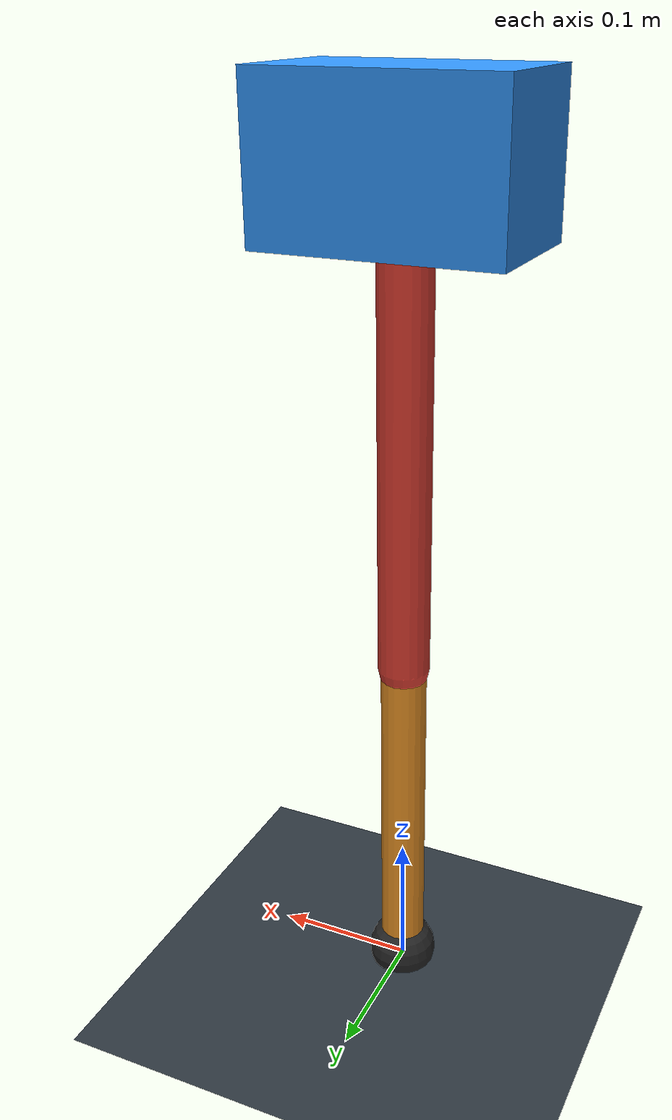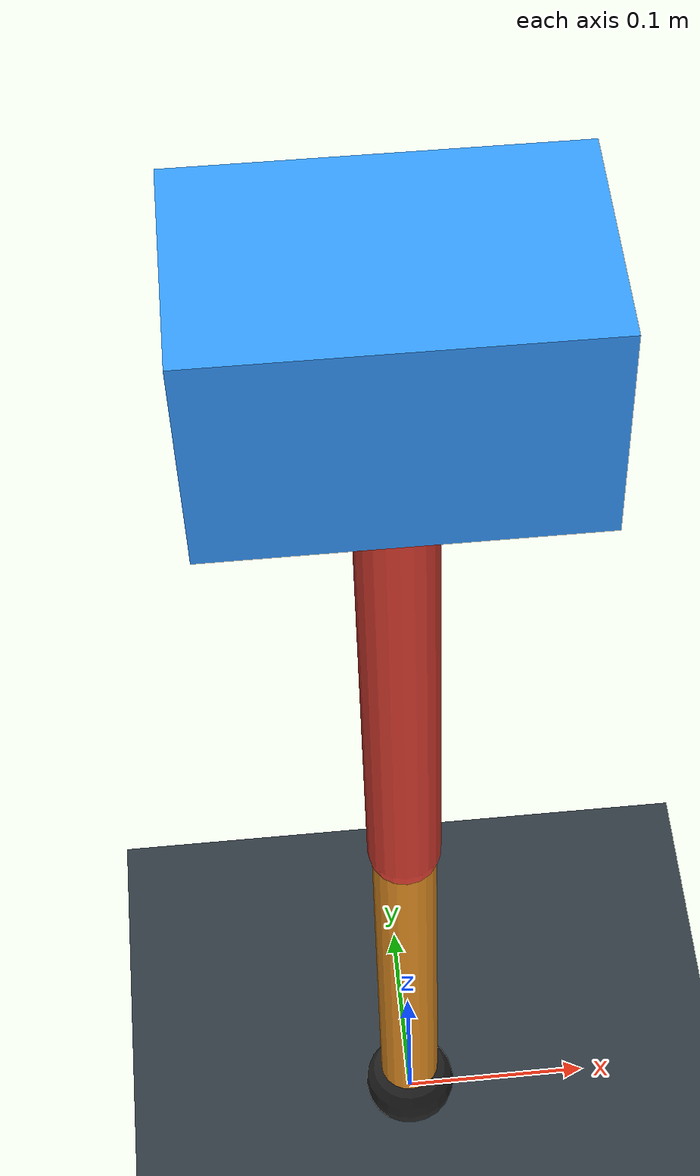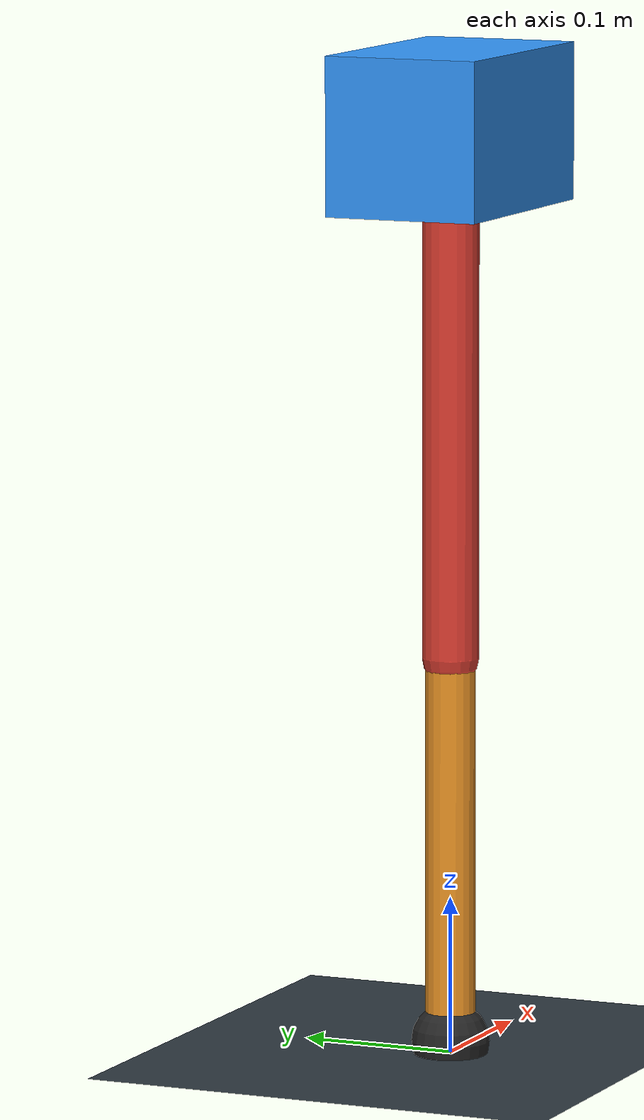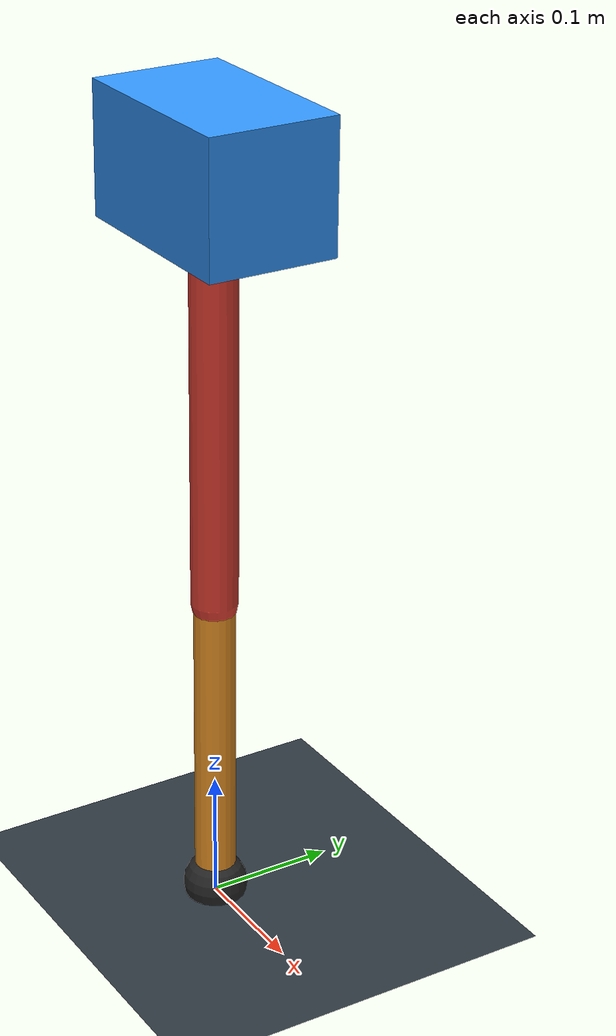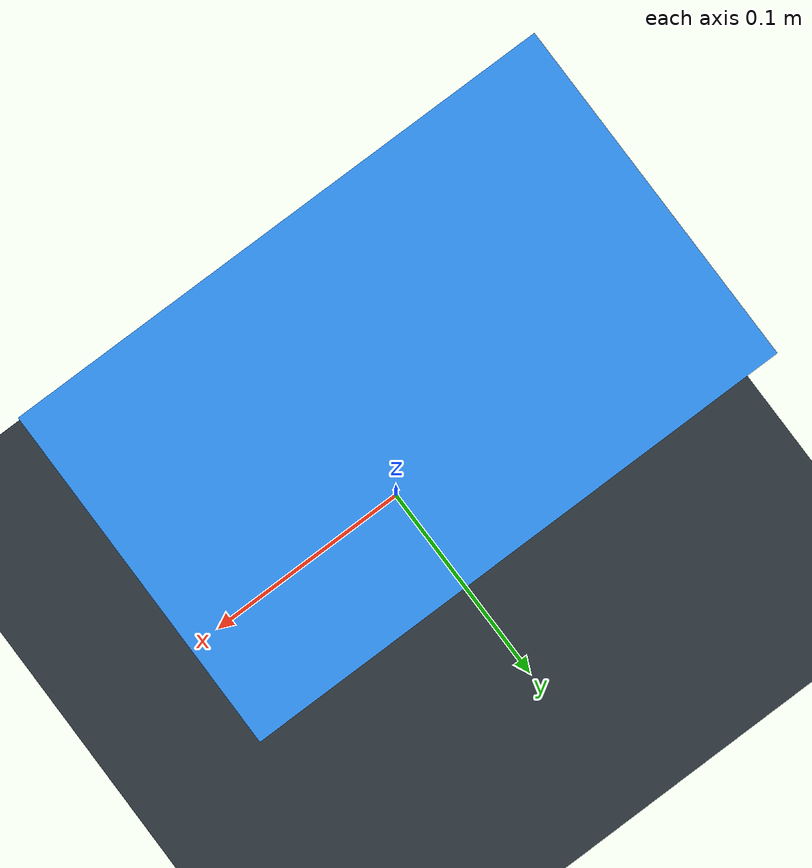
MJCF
<mujoco model="single_axis_two_bar">
  <compiler angle="radian" inertiafromgeom="true"/>
  <option timestep="0.001" integrator="implicitfast" gravity="0 0 -9.81"/>
  <default>
    <joint damping="0.08"/>
    <geom friction="1.2 0.01 0.0001" condim="3"/>
  </default>
  <worldbody>
    <geom name="floor" type="plane" size="5 5 0.1" rgba="0.18 0.22 0.25 1"/>
    <body name="carriage" pos="0 0 0.5898619506884054">
      <joint name="pole_slide" type="slide" axis="0 0 1"/>
      <geom name="payload" type="box" size="0.08 0.05 0.05" mass="3.2311478455585507" rgba="0.2 0.6 1 1"/>
      <body name="thigh" pos="0 0 0">
        <joint name="hip" type="hinge" axis="0 1 0"/>
        <geom name="thigh_link" type="capsule" fromto="0 0 0 0 0 -0.3353480446706421" size="0.018" mass="0.23893991306128234" rgba="0.9 0.25 0.2 1"/>
        <body name="shank" pos="0 0 -0.3353480446706421">
          <joint name="knee" type="hinge" axis="0 1 0"/>
          <geom name="shank_link" type="capsule" fromto="0 0 0 0 0 -0.24698386325554905" size="0.016" mass="0.17597926617338921" rgba="0.95 0.6 0.15 1"/>
          <geom name="foot" type="sphere" pos="0 0 -0.24698386325554905" size="0.025" mass="0.03" rgba="0.15 0.15 0.15 1"/>
          <site name="toe" pos="0 0 -0.24698386325554905" size="0.008"/>
        </body>
      </body>
    </body>
  </worldbody>
  <actuator>
    <motor name="hip_motor" joint="hip" ctrlrange="-30.635434713308598 30.635434713308598"/>
    <motor name="knee_motor" joint="knee" ctrlrange="-148.4556081802167 148.4556081802167"/>
  </actuator>
</mujoco>
